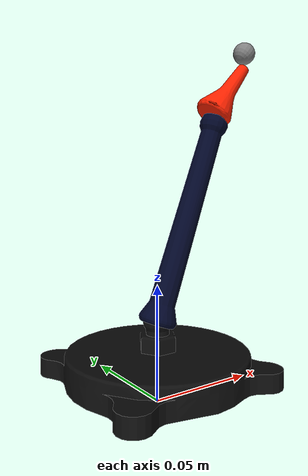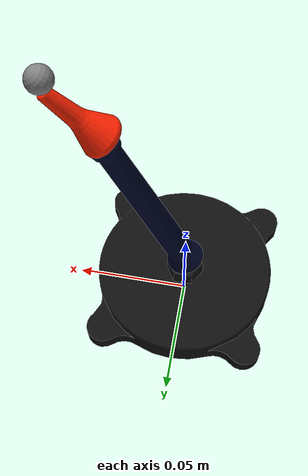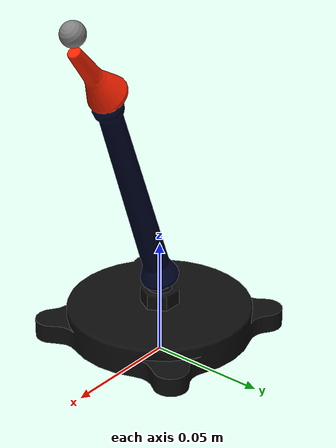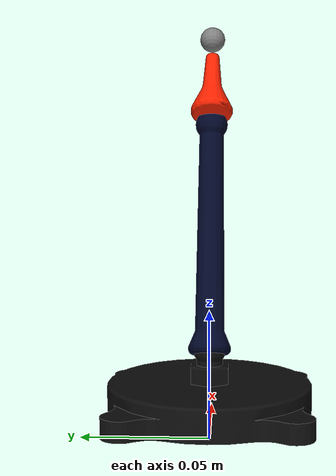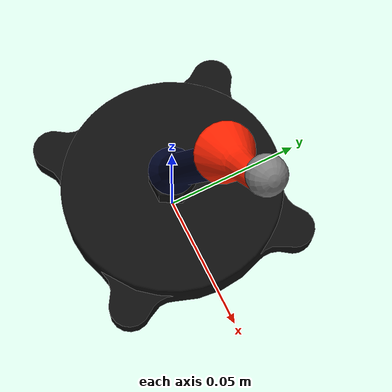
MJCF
<mujoco model="tool">
  <compiler angle="radian" meshdir="." autolimits="true"/>
  <default>
    <default class="visual">
      <geom group="2" type="mesh" contype="0" conaffinity="0"/>
    </default>
    <default class="collision">
      <geom group="3" type="mesh"/>
    </default>
  </default>
  <asset>
    <texture type="skybox" builtin="gradient" rgb1="1 1 1" rgb2=".6 .8 1" width="256" height="256"/>
    <texture type="2d" name="groundplane" builtin="checker" mark="edge" rgb1="0.2 0.3 0.4" rgb2="0.1 0.2 0.3"
      markrgb="0.8 0.8 0.8" width="300" height="300"/>
    <material name="groundplane" texture="groundplane" texuniform="true" texrepeat="5 5" reflectance="0.2"/>

    <material name="tool_mat0" specular="0.05534" shininess="0.25" rgba="0 0.02192 0.15233 1.0"/>
    <material name="base_mat0" specular="0.01019" shininess="0.25" rgba="0.05222 0.05222 0.05222 1.0"/>
    <material name="tip_mat0" specular="0.14415" shininess="0.25" rgba="1 0.13514 0 1.0"/>
    <mesh name="adjustable_tool_arm" file="adjustable_tool_arm/adjustable_tool_arm.obj"/>
    <mesh name="adjustable_tool_arm_c01" file="adjustable_tool_arm/adjustable_tool_arm_c01.stl"/>
    <mesh name="adjustable_tool_base" file="adjustable_tool_base/adjustable_tool_base.obj"/>
    <mesh name="adjustable_tool_base_c01" file="adjustable_tool_base/adjustable_tool_base_c01.stl"/>
    <mesh name="adjustable_tool_base_c02" file="adjustable_tool_base/adjustable_tool_base_c02.stl"/>
    <mesh name="adjustable_tool_tip" file="adjustable_tool_tip/adjustable_tool_tip.obj"/>
    <mesh name="adjustable_tool_tip_c01" file="adjustable_tool_tip/adjustable_tool_tip_c01.stl"/>
    <mesh name="adjustable_tool_tip_c02" file="adjustable_tool_tip/adjustable_tool_tip_c02.stl"/>
  </asset>
  <worldbody>
    <body name="tool">
      <body name="tool_arm" pos="0 0 0.035296" euler="0 0.3490658 0">
        <body euler="1.5707963 0 0">
          <geom material="tool_mat0" mesh="adjustable_tool_arm" class="visual"/>
        </body>
        <geom mesh="adjustable_tool_arm_c01" class="collision"/>
      </body>
      <body name="tool_base">
        <body pos="0 0 0.0095">
          <body euler="1.5707963 0 0">
            <geom material="base_mat0" mesh="adjustable_tool_base" class="visual"/>
          </body>
          <geom mesh="adjustable_tool_base_c02" class="collision"/>
        </body>
        <geom mesh="adjustable_tool_base_c01" class="collision"/>
      </body>
      <body name="tool_tip" pos="0.03046 0 0.124359" euler="0 0.69813168888 0">
        <body euler="1.5707963 0 0">
          <geom material="tip_mat0" mesh="adjustable_tool_tip" class="visual"/>
        </body>
        <geom mesh="adjustable_tool_tip_c01" class="collision"/>
        <geom mesh="adjustable_tool_tip_c02" class="collision"/>
      </body>
      <site name="tool_tip_site" pos="0.04849 0 0.152411" euler="0 0.698132 0"/>
    </body>
  </worldbody>
</mujoco>
